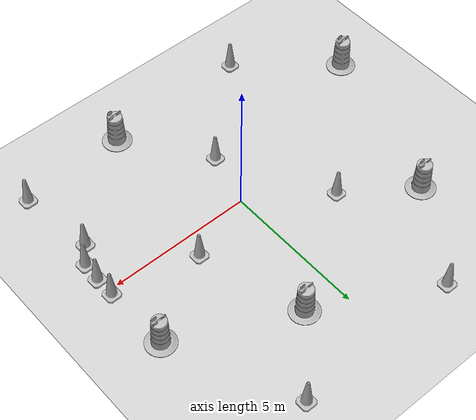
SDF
<sdf version="1.7">
 <world name="default">
  <light name="sun" type="directional">
   <pose>0 0 10 0 -0 0</pose>
   <diffuse>0.8 0.8 0.8 1</diffuse>
   <specular>0.2 0.2 0.2 1</specular>
   <attenuation>
    <range>1000</range>
    <constant>0.9</constant>
    <linear>0.01</linear>
    <quadratic>0.001</quadratic>
   </attenuation>
   <direction>-0.5 0.1 -0.9</direction>
   <spot><inner_angle>0</inner_angle><outer_angle>0</outer_angle><falloff>0</falloff></spot>
  </light>
  <model name="ground_plane">
   <static>1</static>
   <link name="link">
    <collision name="collision">
     <geometry><plane><normal>0 0 1</normal><size>100 100</size></plane></geometry>
     <surface>
      <contact><collide_bitmask>65535</collide_bitmask></contact>
      <friction><ode><mu>100</mu><mu2>50</mu2></ode></friction>
     </surface>
    </collision>
    <visual name="visual">
     <cast_shadows>0</cast_shadows>
     <geometry><plane><normal>0 0 1</normal><size>100 100</size></plane></geometry>
     <material>
      <script><uri>file://media/materials/scripts/gazebo.material</uri><name>Gazebo/Grey</name></script>
     </material>
    </visual>
   </link>
  </model>
  <gravity>0 0 -9.8</gravity>
  <magnetic_field>6e-06 2.3e-05 -4.2e-05</magnetic_field>
  <atmosphere type="adiabatic"/>
  <physics type="ode">
   <max_step_size>0.001</max_step_size>
   <real_time_factor>1</real_time_factor>
   <real_time_update_rate>1000</real_time_update_rate>
  </physics>
  <scene><ambient>0.4 0.4 0.4 1</ambient><background>0.7 0.7 0.7 1</background><shadows>1</shadows></scene>
  <audio><device>default</device></audio>
  <spherical_coordinates>
   <surface_model>EARTH_WGS84</surface_model>
   <latitude_deg>0</latitude_deg>
   <longitude_deg>0</longitude_deg>
   <elevation>0</elevation>
   <heading_deg>0</heading_deg>
  </spherical_coordinates>
  <model name="Construction Barrel">
   <link name="link">
    <inertial>
     <pose>0 0 0.4 0 -0 0</pose>
     <mass>500</mass>
     <inertia><ixx>51.2096</ixx><iyy>51.2096</iyy><izz>25</izz><ixy>0</ixy><ixz>0</ixz><iyz>0</iyz></inertia>
    </inertial>
    <collision name="collision">
     <geometry><mesh><uri>model://construction_barrel/meshes/construction_barrel.dae</uri></mesh></geometry>
    </collision>
    <visual name="visual">
     <geometry><mesh><uri>model://construction_barrel/meshes/construction_barrel.dae</uri></mesh></geometry>
    </visual>
   </link>
   <pose>1.29296 4.39802 -3e-06 -6e-06 -5e-06 -2.9e-05</pose>
  </model>
  <model name="Construction Barrel_0">
   <link name="link">
    <inertial>
     <pose>0 0 0.4 0 -0 0</pose>
     <mass>500</mass>
     <inertia><ixx>51.2096</ixx><iyy>51.2096</iyy><izz>25</izz><ixy>0</ixy><ixz>0</ixz><iyz>0</iyz></inertia>
    </inertial>
    <collision name="collision">
     <geometry><mesh><uri>model://construction_barrel/meshes/construction_barrel.dae</uri></mesh></geometry>
    </collision>
    <visual name="visual">
     <geometry><mesh><uri>model://construction_barrel/meshes/construction_barrel.dae</uri></mesh></geometry>
    </visual>
   </link>
   <pose>5.2386 2.45586 -3e-06 -6e-06 -5e-06 -2.7e-05</pose>
  </model>
  <model name="Construction Barrel_1">
   <link name="link">
    <inertial>
     <pose>0 0 0.4 0 -0 0</pose>
     <mass>500</mass>
     <inertia><ixx>51.2096</ixx><iyy>51.2096</iyy><izz>25</izz><ixy>0</ixy><ixz>0</ixz><iyz>0</iyz></inertia>
    </inertial>
    <collision name="collision">
     <geometry><mesh><uri>model://construction_barrel/meshes/construction_barrel.dae</uri></mesh></geometry>
    </collision>
    <visual name="visual">
     <geometry><mesh><uri>model://construction_barrel/meshes/construction_barrel.dae</uri></mesh></geometry>
    </visual>
   </link>
   <pose>1.44313 -4.65331 -1e-06 4e-06 -1e-06 -2.6e-05</pose>
  </model>
  <model name="Construction Barrel_2">
   <link name="link">
    <inertial>
     <pose>0 0 0.4 0 -0 0</pose>
     <mass>500</mass>
     <inertia><ixx>51.2096</ixx><iyy>51.2096</iyy><izz>25</izz><ixy>0</ixy><ixz>0</ixz><iyz>0</iyz></inertia>
    </inertial>
    <collision name="collision">
     <geometry><mesh><uri>model://construction_barrel/meshes/construction_barrel.dae</uri></mesh></geometry>
    </collision>
    <visual name="visual">
     <geometry><mesh><uri>model://construction_barrel/meshes/construction_barrel.dae</uri></mesh></geometry>
    </visual>
   </link>
   <pose>-4.78171 3.37741 -1e-06 -8e-06 -2e-06 -2.5e-05</pose>
  </model>
  <model name="Construction Barrel_3">
   <link name="link">
    <inertial>
     <pose>0 0 0.4 0 -0 0</pose>
     <mass>500</mass>
     <inertia><ixx>51.2096</ixx><iyy>51.2096</iyy><izz>25</izz><ixy>0</ixy><ixz>0</ixz><iyz>0</iyz></inertia>
    </inertial>
    <collision name="collision">
     <geometry><mesh><uri>model://construction_barrel/meshes/construction_barrel.dae</uri></mesh></geometry>
    </collision>
    <visual name="visual">
     <geometry><mesh><uri>model://construction_barrel/meshes/construction_barrel.dae</uri></mesh></geometry>
    </visual>
   </link>
   <pose>-6.67753 -2.31264 -2e-06 8e-06 -4e-06 -2.6e-05</pose>
  </model>
  <model name="Construction Cone">
   <link name="link">
    <collision name="collision">
     <geometry>
      <mesh><scale>10 10 10</scale><uri>model://construction_cone/meshes/construction_cone.dae</uri></mesh>
     </geometry>
    </collision>
    <visual name="visual">
     <geometry>
      <mesh><scale>10 10 10</scale><uri>model://construction_cone/meshes/construction_cone.dae</uri></mesh>
     </geometry>
    </visual>
    <inertial>
     <inertia><ixx>1</ixx><ixy>0</ixy><ixz>0</ixz><iyy>1</iyy><iyz>0</iyz><izz>1</izz></inertia>
     <mass>1</mass>
    </inertial>
   </link>
   <pose>-0.521597 -1.88224 -0 0 -1e-06 0</pose>
  </model>
  <model name="Construction Cone_0">
   <link name="link">
    <collision name="collision">
     <geometry>
      <mesh><scale>10 10 10</scale><uri>model://construction_cone/meshes/construction_cone.dae</uri></mesh>
     </geometry>
    </collision>
    <visual name="visual">
     <geometry>
      <mesh><scale>10 10 10</scale><uri>model://construction_cone/meshes/construction_cone.dae</uri></mesh>
     </geometry>
    </visual>
    <inertial>
     <inertia><ixx>1</ixx><ixy>0</ixy><ixz>0</ixz><iyy>1</iyy><iyz>0</iyz><izz>1</izz></inertia>
     <mass>1</mass>
    </inertial>
   </link>
   <pose>5.32044 0.180721 -0 0 -1e-06 0</pose>
  </model>
  <model name="Construction Cone_1">
   <link name="link">
    <collision name="collision">
     <geometry>
      <mesh><scale>10 10 10</scale><uri>model://construction_cone/meshes/construction_cone.dae</uri></mesh>
     </geometry>
    </collision>
    <visual name="visual">
     <geometry>
      <mesh><scale>10 10 10</scale><uri>model://construction_cone/meshes/construction_cone.dae</uri></mesh>
     </geometry>
    </visual>
    <inertial>
     <inertia><ixx>1</ixx><ixy>0</ixy><ixz>0</ixz><iyy>1</iyy><iyz>0</iyz><izz>1</izz></inertia>
     <mass>1</mass>
    </inertial>
   </link>
   <pose>5.32742 -0.529777 -0 0 -1e-06 0</pose>
  </model>
  <model name="Construction Cone_2">
   <link name="link">
    <collision name="collision">
     <geometry>
      <mesh><scale>10 10 10</scale><uri>model://construction_cone/meshes/construction_cone.dae</uri></mesh>
     </geometry>
    </collision>
    <visual name="visual">
     <geometry>
      <mesh><scale>10 10 10</scale><uri>model://construction_cone/meshes/construction_cone.dae</uri></mesh>
     </geometry>
    </visual>
    <inertial>
     <inertia><ixx>1</ixx><ixy>0</ixy><ixz>0</ixz><iyy>1</iyy><iyz>0</iyz><izz>1</izz></inertia>
     <mass>1</mass>
    </inertial>
   </link>
   <pose>5.27552 -1.21403 -0 0 -1e-06 0</pose>
  </model>
  <model name="Construction Cone_3">
   <link name="link">
    <collision name="collision">
     <geometry>
      <mesh><scale>10 10 10</scale><uri>model://construction_cone/meshes/construction_cone.dae</uri></mesh>
     </geometry>
    </collision>
    <visual name="visual">
     <geometry>
      <mesh><scale>10 10 10</scale><uri>model://construction_cone/meshes/construction_cone.dae</uri></mesh>
     </geometry>
    </visual>
    <inertial>
     <inertia><ixx>1</ixx><ixy>0</ixy><ixz>0</ixz><iyy>1</iyy><iyz>0</iyz><izz>1</izz></inertia>
     <mass>1</mass>
    </inertial>
   </link>
   <pose>4.83559 -1.82622 -0 0 -1e-06 0</pose>
  </model>
  <model name="Construction Cone_4">
   <link name="link">
    <collision name="collision">
     <geometry>
      <mesh><scale>10 10 10</scale><uri>model://construction_cone/meshes/construction_cone.dae</uri></mesh>
     </geometry>
    </collision>
    <visual name="visual">
     <geometry>
      <mesh><scale>10 10 10</scale><uri>model://construction_cone/meshes/construction_cone.dae</uri></mesh>
     </geometry>
    </visual>
    <inertial>
     <inertia><ixx>1</ixx><ixy>0</ixy><ixz>0</ixz><iyy>1</iyy><iyz>0</iyz><izz>1</izz></inertia>
     <mass>1</mass>
    </inertial>
   </link>
   <pose>-3.67794 -4.81752 -0 0 -1e-06 0</pose>
  </model>
  <model name="Construction Cone_5">
   <link name="link">
    <collision name="collision">
     <geometry>
      <mesh><scale>10 10 10</scale><uri>model://construction_cone/meshes/construction_cone.dae</uri></mesh>
     </geometry>
    </collision>
    <visual name="visual">
     <geometry>
      <mesh><scale>10 10 10</scale><uri>model://construction_cone/meshes/construction_cone.dae</uri></mesh>
     </geometry>
    </visual>
    <inertial>
     <inertia><ixx>1</ixx><ixy>0</ixy><ixz>0</ixz><iyy>1</iyy><iyz>0</iyz><izz>1</izz></inertia>
     <mass>1</mass>
    </inertial>
   </link>
   <pose>-2.63325 6.53218 -0 0 -1e-06 0</pose>
  </model>
  <model name="Construction Cone_6">
   <link name="link">
    <collision name="collision">
     <geometry>
      <mesh><scale>10 10 10</scale><uri>model://construction_cone/meshes/construction_cone.dae</uri></mesh>
     </geometry>
    </collision>
    <visual name="visual">
     <geometry>
      <mesh><scale>10 10 10</scale><uri>model://construction_cone/meshes/construction_cone.dae</uri></mesh>
     </geometry>
    </visual>
    <inertial>
     <inertia><ixx>1</ixx><ixy>0</ixy><ixz>0</ixz><iyy>1</iyy><iyz>0</iyz><izz>1</izz></inertia>
     <mass>1</mass>
    </inertial>
   </link>
   <pose>5.18442 -4.43113 -0 0 -1e-06 0</pose>
  </model>
  <model name="Construction Cone_7">
   <link name="link">
    <collision name="collision">
     <geometry>
      <mesh><scale>10 10 10</scale><uri>model://construction_cone/meshes/construction_cone.dae</uri></mesh>
     </geometry>
    </collision>
    <visual name="visual">
     <geometry>
      <mesh><scale>10 10 10</scale><uri>model://construction_cone/meshes/construction_cone.dae</uri></mesh>
     </geometry>
    </visual>
    <inertial>
     <inertia><ixx>1</ixx><ixy>0</ixy><ixz>0</ixz><iyy>1</iyy><iyz>0</iyz><izz>1</izz></inertia>
     <mass>1</mass>
    </inertial>
   </link>
   <pose>3.34246 6.68007 -0 1e-06 -0 0</pose>
  </model>
  <model name="Construction Cone_8">
   <link name="link">
    <collision name="collision">
     <geometry>
      <mesh><scale>10 10 10</scale><uri>model://construction_cone/meshes/construction_cone.dae</uri></mesh>
     </geometry>
    </collision>
    <visual name="visual">
     <geometry>
      <mesh><scale>10 10 10</scale><uri>model://construction_cone/meshes/construction_cone.dae</uri></mesh>
     </geometry>
    </visual>
    <inertial>
     <inertia><ixx>1</ixx><ixy>0</ixy><ixz>0</ixz><iyy>1</iyy><iyz>0</iyz><izz>1</izz></inertia>
     <mass>1</mass>
    </inertial>
   </link>
   <pose>2.39314 0.803095 -0 0 -1e-06 0</pose>
  </model>
  <model name="Construction Cone_9">
   <link name="link">
    <collision name="collision">
     <geometry>
      <mesh><scale>10 10 10</scale><uri>model://construction_cone/meshes/construction_cone.dae</uri></mesh>
     </geometry>
    </collision>
    <visual name="visual">
     <geometry>
      <mesh><scale>10 10 10</scale><uri>model://construction_cone/meshes/construction_cone.dae</uri></mesh>
     </geometry>
    </visual>
    <inertial>
     <inertia><ixx>1</ixx><ixy>0</ixy><ixz>0</ixz><iyy>1</iyy><iyz>0</iyz><izz>1</izz></inertia>
     <mass>1</mass>
    </inertial>
   </link>
   <pose>-2.53061 1.79228 -0 0 -0 0</pose>
  </model>
 </world>
</sdf>
